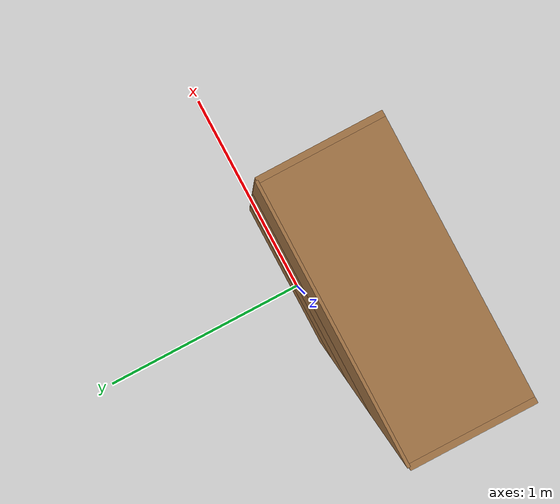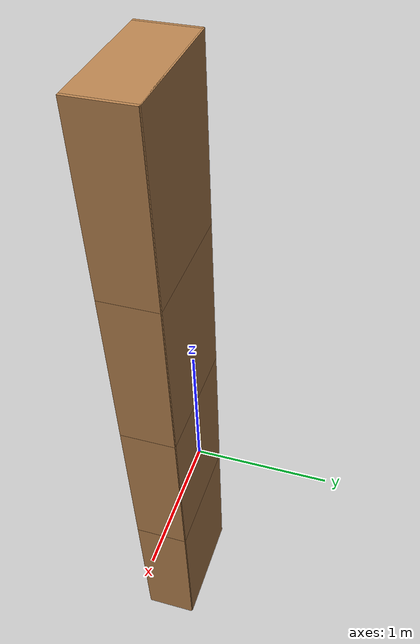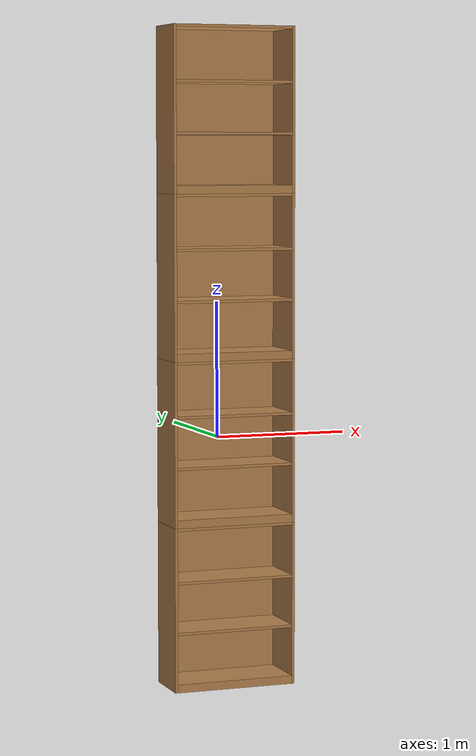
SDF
<?xml version='1.0'?>
<sdf version='1.6'>
  <model name='shelf1.0'>
    <model name='bookshelf'>
      <static>1</static>
      <link name='link'>
        <inertial>
          <mass>1</mass>
        </inertial>
        <collision name='back'>
          <pose frame=''>0 0.005 0.6 0 -0 0</pose>
          <geometry>
            <box>
              <size>0.9 0.01 1.2</size>
            </box>
          </geometry>
        </collision>
        <visual name='visual1'>
          <pose frame=''>0 0.005 0.6 0 -0 0</pose>
          <geometry>
            <box>
              <size>0.9 0.01 1.2</size>
            </box>
          </geometry>
          <material>
            <script>
              <uri>file://media/materials/scripts/gazebo.material</uri>
              <name>Gazebo/Wood</name>
            </script>
          </material>
        </visual>
        <collision name='left_side'>
          <pose frame=''>0.45 -0.195 0.6 0 -0 0</pose>
          <geometry>
            <box>
              <size>0.02 0.4 1.2</size>
            </box>
          </geometry>
        </collision>
        <visual name='visual2'>
          <pose frame=''>0.45 -0.195 0.6 0 -0 0</pose>
          <geometry>
            <box>
              <size>0.02 0.4 1.2</size>
            </box>
          </geometry>
          <material>
            <script>
              <uri>file://media/materials/scripts/gazebo.material</uri>
              <name>Gazebo/Wood</name>
            </script>
          </material>
        </visual>
        <collision name='right_side'>
          <pose frame=''>-0.45 -0.195 0.6 0 -0 0</pose>
          <geometry>
            <box>
              <size>0.02 0.4 1.2</size>
            </box>
          </geometry>
        </collision>
        <visual name='visual3'>
          <pose frame=''>-0.45 -0.195 0.6 0 -0 0</pose>
          <geometry>
            <box>
              <size>0.02 0.4 1.2</size>
            </box>
          </geometry>
          <material>
            <script>
              <uri>file://media/materials/scripts/gazebo.material</uri>
              <name>Gazebo/Wood</name>
            </script>
          </material>
        </visual>
        <collision name='bottom'>
          <pose frame=''>0 -0.195 0.03 0 -0 0</pose>
          <geometry>
            <box>
              <size>0.88 0.4 0.06</size>
            </box>
          </geometry>
        </collision>
        <visual name='visual4'>
          <pose frame=''>0 -0.195 0.03 0 -0 0</pose>
          <geometry>
            <box>
              <size>0.88 0.4 0.06</size>
            </box>
          </geometry>
          <material>
            <script>
              <uri>file://media/materials/scripts/gazebo.material</uri>
              <name>Gazebo/Wood</name>
            </script>
          </material>
        </visual>
        <collision name='top'>
          <pose frame=''>0 -0.195 1.19 0 -0 0</pose>
          <geometry>
            <box>
              <size>0.88 0.4 0.02</size>
            </box>
          </geometry>
        </collision>
        <visual name='visual5'>
          <pose frame=''>0 -0.195 1.19 0 -0 0</pose>
          <geometry>
            <box>
              <size>0.88 0.4 0.02</size>
            </box>
          </geometry>
          <material>
            <script>
              <uri>file://media/materials/scripts/gazebo.material</uri>
              <name>Gazebo/Wood</name>
            </script>
          </material>
        </visual>
        <collision name='low_shelf'>
          <pose frame=''>0 -0.195 0.43 0 -0 0</pose>
          <geometry>
            <box>
              <size>0.88 0.4 0.02</size>
            </box>
          </geometry>
        </collision>
        <visual name='visual6'>
          <pose frame=''>0 -0.195 0.43 0 -0 0</pose>
          <geometry>
            <box>
              <size>0.88 0.4 0.02</size>
            </box>
          </geometry>
          <material>
            <script>
              <uri>file://media/materials/scripts/gazebo.material</uri>
              <name>Gazebo/Wood</name>
            </script>
          </material>
        </visual>
        <collision name='high_shelf'>
          <pose frame=''>0 -0.195 0.8 0 -0 0</pose>
          <geometry>
            <box>
              <size>0.88 0.4 0.02</size>
            </box>
          </geometry>
        </collision>
        <visual name='visual7'>
          <pose frame=''>0 -0.195 0.8 0 -0 0</pose>
          <geometry>
            <box>
              <size>0.88 0.4 0.02</size>
            </box>
          </geometry>
          <material>
            <script>
              <uri>file://media/materials/scripts/gazebo.material</uri>
              <name>Gazebo/Wood</name>
            </script>
          </material>
        </visual>
      </link>
      <pose frame=''>1e-06 0 -1.8 0 -0 0</pose>
    </model>
    <model name='bookshelf_clone'>
      <static>1</static>
      <link name='link'>
        <inertial>
          <mass>1</mass>
        </inertial>
        <collision name='back'>
          <pose frame=''>0 0.005 0.6 0 -0 0</pose>
          <geometry>
            <box>
              <size>0.9 0.01 1.2</size>
            </box>
          </geometry>
        </collision>
        <visual name='visual1'>
          <pose frame=''>0 0.005 0.6 0 -0 0</pose>
          <geometry>
            <box>
              <size>0.9 0.01 1.2</size>
            </box>
          </geometry>
          <material>
            <script>
              <uri>file://media/materials/scripts/gazebo.material</uri>
              <name>Gazebo/Wood</name>
            </script>
          </material>
        </visual>
        <collision name='left_side'>
          <pose frame=''>0.45 -0.195 0.6 0 -0 0</pose>
          <geometry>
            <box>
              <size>0.02 0.4 1.2</size>
            </box>
          </geometry>
        </collision>
        <visual name='visual2'>
          <pose frame=''>0.45 -0.195 0.6 0 -0 0</pose>
          <geometry>
            <box>
              <size>0.02 0.4 1.2</size>
            </box>
          </geometry>
          <material>
            <script>
              <uri>file://media/materials/scripts/gazebo.material</uri>
              <name>Gazebo/Wood</name>
            </script>
          </material>
        </visual>
        <collision name='right_side'>
          <pose frame=''>-0.45 -0.195 0.6 0 -0 0</pose>
          <geometry>
            <box>
              <size>0.02 0.4 1.2</size>
            </box>
          </geometry>
        </collision>
        <visual name='visual3'>
          <pose frame=''>-0.45 -0.195 0.6 0 -0 0</pose>
          <geometry>
            <box>
              <size>0.02 0.4 1.2</size>
            </box>
          </geometry>
          <material>
            <script>
              <uri>file://media/materials/scripts/gazebo.material</uri>
              <name>Gazebo/Wood</name>
            </script>
          </material>
        </visual>
        <collision name='bottom'>
          <pose frame=''>0 -0.195 0.03 0 -0 0</pose>
          <geometry>
            <box>
              <size>0.88 0.4 0.06</size>
            </box>
          </geometry>
        </collision>
        <visual name='visual4'>
          <pose frame=''>0 -0.195 0.03 0 -0 0</pose>
          <geometry>
            <box>
              <size>0.88 0.4 0.06</size>
            </box>
          </geometry>
          <material>
            <script>
              <uri>file://media/materials/scripts/gazebo.material</uri>
              <name>Gazebo/Wood</name>
            </script>
          </material>
        </visual>
        <collision name='top'>
          <pose frame=''>0 -0.195 1.19 0 -0 0</pose>
          <geometry>
            <box>
              <size>0.88 0.4 0.02</size>
            </box>
          </geometry>
        </collision>
        <visual name='visual5'>
          <pose frame=''>0 -0.195 1.19 0 -0 0</pose>
          <geometry>
            <box>
              <size>0.88 0.4 0.02</size>
            </box>
          </geometry>
          <material>
            <script>
              <uri>file://media/materials/scripts/gazebo.material</uri>
              <name>Gazebo/Wood</name>
            </script>
          </material>
        </visual>
        <collision name='low_shelf'>
          <pose frame=''>0 -0.195 0.43 0 -0 0</pose>
          <geometry>
            <box>
              <size>0.88 0.4 0.02</size>
            </box>
          </geometry>
        </collision>
        <visual name='visual6'>
          <pose frame=''>0 -0.195 0.43 0 -0 0</pose>
          <geometry>
            <box>
              <size>0.88 0.4 0.02</size>
            </box>
          </geometry>
          <material>
            <script>
              <uri>file://media/materials/scripts/gazebo.material</uri>
              <name>Gazebo/Wood</name>
            </script>
          </material>
        </visual>
        <collision name='high_shelf'>
          <pose frame=''>0 -0.195 0.8 0 -0 0</pose>
          <geometry>
            <box>
              <size>0.88 0.4 0.02</size>
            </box>
          </geometry>
        </collision>
        <visual name='visual7'>
          <pose frame=''>0 -0.195 0.8 0 -0 0</pose>
          <geometry>
            <box>
              <size>0.88 0.4 0.02</size>
            </box>
          </geometry>
          <material>
            <script>
              <uri>file://media/materials/scripts/gazebo.material</uri>
              <name>Gazebo/Wood</name>
            </script>
          </material>
        </visual>
      </link>
      <pose frame=''>1e-06 0 -0.600002 0 -0 0</pose>
    </model>
    <model name='bookshelf_clone_0'>
      <static>1</static>
      <link name='link'>
        <inertial>
          <mass>1</mass>
        </inertial>
        <collision name='back'>
          <pose frame=''>0 0.005 0.6 0 -0 0</pose>
          <geometry>
            <box>
              <size>0.9 0.01 1.2</size>
            </box>
          </geometry>
        </collision>
        <visual name='visual1'>
          <pose frame=''>0 0.005 0.6 0 -0 0</pose>
          <geometry>
            <box>
              <size>0.9 0.01 1.2</size>
            </box>
          </geometry>
          <material>
            <script>
              <uri>file://media/materials/scripts/gazebo.material</uri>
              <name>Gazebo/Wood</name>
            </script>
          </material>
        </visual>
        <collision name='left_side'>
          <pose frame=''>0.45 -0.195 0.6 0 -0 0</pose>
          <geometry>
            <box>
              <size>0.02 0.4 1.2</size>
            </box>
          </geometry>
        </collision>
        <visual name='visual2'>
          <pose frame=''>0.45 -0.195 0.6 0 -0 0</pose>
          <geometry>
            <box>
              <size>0.02 0.4 1.2</size>
            </box>
          </geometry>
          <material>
            <script>
              <uri>file://media/materials/scripts/gazebo.material</uri>
              <name>Gazebo/Wood</name>
            </script>
          </material>
        </visual>
        <collision name='right_side'>
          <pose frame=''>-0.45 -0.195 0.6 0 -0 0</pose>
          <geometry>
            <box>
              <size>0.02 0.4 1.2</size>
            </box>
          </geometry>
        </collision>
        <visual name='visual3'>
          <pose frame=''>-0.45 -0.195 0.6 0 -0 0</pose>
          <geometry>
            <box>
              <size>0.02 0.4 1.2</size>
            </box>
          </geometry>
          <material>
            <script>
              <uri>file://media/materials/scripts/gazebo.material</uri>
              <name>Gazebo/Wood</name>
            </script>
          </material>
        </visual>
        <collision name='bottom'>
          <pose frame=''>0 -0.195 0.03 0 -0 0</pose>
          <geometry>
            <box>
              <size>0.88 0.4 0.06</size>
            </box>
          </geometry>
        </collision>
        <visual name='visual4'>
          <pose frame=''>0 -0.195 0.03 0 -0 0</pose>
          <geometry>
            <box>
              <size>0.88 0.4 0.06</size>
            </box>
          </geometry>
          <material>
            <script>
              <uri>file://media/materials/scripts/gazebo.material</uri>
              <name>Gazebo/Wood</name>
            </script>
          </material>
        </visual>
        <collision name='top'>
          <pose frame=''>0 -0.195 1.19 0 -0 0</pose>
          <geometry>
            <box>
              <size>0.88 0.4 0.02</size>
            </box>
          </geometry>
        </collision>
        <visual name='visual5'>
          <pose frame=''>0 -0.195 1.19 0 -0 0</pose>
          <geometry>
            <box>
              <size>0.88 0.4 0.02</size>
            </box>
          </geometry>
          <material>
            <script>
              <uri>file://media/materials/scripts/gazebo.material</uri>
              <name>Gazebo/Wood</name>
            </script>
          </material>
        </visual>
        <collision name='low_shelf'>
          <pose frame=''>0 -0.195 0.43 0 -0 0</pose>
          <geometry>
            <box>
              <size>0.88 0.4 0.02</size>
            </box>
          </geometry>
        </collision>
        <visual name='visual6'>
          <pose frame=''>0 -0.195 0.43 0 -0 0</pose>
          <geometry>
            <box>
              <size>0.88 0.4 0.02</size>
            </box>
          </geometry>
          <material>
            <script>
              <uri>file://media/materials/scripts/gazebo.material</uri>
              <name>Gazebo/Wood</name>
            </script>
          </material>
        </visual>
        <collision name='high_shelf'>
          <pose frame=''>0 -0.195 0.8 0 -0 0</pose>
          <geometry>
            <box>
              <size>0.88 0.4 0.02</size>
            </box>
          </geometry>
        </collision>
        <visual name='visual7'>
          <pose frame=''>0 -0.195 0.8 0 -0 0</pose>
          <geometry>
            <box>
              <size>0.88 0.4 0.02</size>
            </box>
          </geometry>
          <material>
            <script>
              <uri>file://media/materials/scripts/gazebo.material</uri>
              <name>Gazebo/Wood</name>
            </script>
          </material>
        </visual>
      </link>
      <pose frame=''>1e-06 0 0.599998 0 -0 0</pose>
    </model>
    <model name='bookshelf_clone_0_clone'>
      <static>1</static>
      <link name='link'>
        <inertial>
          <mass>1</mass>
        </inertial>
        <collision name='back'>
          <pose frame=''>0 0.005 0.6 0 -0 0</pose>
          <geometry>
            <box>
              <size>0.9 0.01 1.2</size>
            </box>
          </geometry>
        </collision>
        <visual name='visual1'>
          <pose frame=''>0 0.005 0.6 0 -0 0</pose>
          <geometry>
            <box>
              <size>0.9 0.01 1.2</size>
            </box>
          </geometry>
          <material>
            <script>
              <uri>file://media/materials/scripts/gazebo.material</uri>
              <name>Gazebo/Wood</name>
            </script>
          </material>
        </visual>
        <collision name='left_side'>
          <pose frame=''>0.45 -0.195 0.6 0 -0 0</pose>
          <geometry>
            <box>
              <size>0.02 0.4 1.2</size>
            </box>
          </geometry>
        </collision>
        <visual name='visual2'>
          <pose frame=''>0.45 -0.195 0.6 0 -0 0</pose>
          <geometry>
            <box>
              <size>0.02 0.4 1.2</size>
            </box>
          </geometry>
          <material>
            <script>
              <uri>file://media/materials/scripts/gazebo.material</uri>
              <name>Gazebo/Wood</name>
            </script>
          </material>
        </visual>
        <collision name='right_side'>
          <pose frame=''>-0.45 -0.195 0.6 0 -0 0</pose>
          <geometry>
            <box>
              <size>0.02 0.4 1.2</size>
            </box>
          </geometry>
        </collision>
        <visual name='visual3'>
          <pose frame=''>-0.45 -0.195 0.6 0 -0 0</pose>
          <geometry>
            <box>
              <size>0.02 0.4 1.2</size>
            </box>
          </geometry>
          <material>
            <script>
              <uri>file://media/materials/scripts/gazebo.material</uri>
              <name>Gazebo/Wood</name>
            </script>
          </material>
        </visual>
        <collision name='bottom'>
          <pose frame=''>0 -0.195 0.03 0 -0 0</pose>
          <geometry>
            <box>
              <size>0.88 0.4 0.06</size>
            </box>
          </geometry>
        </collision>
        <visual name='visual4'>
          <pose frame=''>0 -0.195 0.03 0 -0 0</pose>
          <geometry>
            <box>
              <size>0.88 0.4 0.06</size>
            </box>
          </geometry>
          <material>
            <script>
              <uri>file://media/materials/scripts/gazebo.material</uri>
              <name>Gazebo/Wood</name>
            </script>
          </material>
        </visual>
        <collision name='top'>
          <pose frame=''>0 -0.195 1.19 0 -0 0</pose>
          <geometry>
            <box>
              <size>0.88 0.4 0.02</size>
            </box>
          </geometry>
        </collision>
        <visual name='visual5'>
          <pose frame=''>0 -0.195 1.19 0 -0 0</pose>
          <geometry>
            <box>
              <size>0.88 0.4 0.02</size>
            </box>
          </geometry>
          <material>
            <script>
              <uri>file://media/materials/scripts/gazebo.material</uri>
              <name>Gazebo/Wood</name>
            </script>
          </material>
        </visual>
        <collision name='low_shelf'>
          <pose frame=''>0 -0.195 0.43 0 -0 0</pose>
          <geometry>
            <box>
              <size>0.88 0.4 0.02</size>
            </box>
          </geometry>
        </collision>
        <visual name='visual6'>
          <pose frame=''>0 -0.195 0.43 0 -0 0</pose>
          <geometry>
            <box>
              <size>0.88 0.4 0.02</size>
            </box>
          </geometry>
          <material>
            <script>
              <uri>file://media/materials/scripts/gazebo.material</uri>
              <name>Gazebo/Wood</name>
            </script>
          </material>
        </visual>
        <collision name='high_shelf'>
          <pose frame=''>0 -0.195 0.8 0 -0 0</pose>
          <geometry>
            <box>
              <size>0.88 0.4 0.02</size>
            </box>
          </geometry>
        </collision>
        <visual name='visual7'>
          <pose frame=''>0 -0.195 0.8 0 -0 0</pose>
          <geometry>
            <box>
              <size>0.88 0.4 0.02</size>
            </box>
          </geometry>
          <material>
            <script>
              <uri>file://media/materials/scripts/gazebo.material</uri>
              <name>Gazebo/Wood</name>
            </script>
          </material>
        </visual>
      </link>
      <pose frame=''>1e-06 0 1.8 0 -0 0</pose>
    </model>
    <joint name='link_JOINT_3' type='fixed'>
      <parent>bookshelf::link</parent>
      <child>bookshelf_clone::link</child>
      <pose frame=''>0 0 0 0 -0 0</pose>
      <physics>
        <ode>
          <limit>
            <cfm>0</cfm>
            <erp>0.2</erp>
          </limit>
          <suspension>
            <cfm>0</cfm>
            <erp>0.2</erp>
          </suspension>
        </ode>
      </physics>
    </joint>
    <joint name='link_JOINT_4' type='fixed'>
      <parent>bookshelf::link</parent>
      <child>bookshelf_clone_0::link</child>
      <pose frame=''>0 0 0 0 -0 0</pose>
      <physics>
        <ode>
          <limit>
            <cfm>0</cfm>
            <erp>0.2</erp>
          </limit>
          <suspension>
            <cfm>0</cfm>
            <erp>0.2</erp>
          </suspension>
        </ode>
      </physics>
    </joint>
    <joint name='link_JOINT_5' type='fixed'>
      <parent>bookshelf::link</parent>
      <child>bookshelf_clone_0_clone::link</child>
      <pose frame=''>0 0 0 0 -0 0</pose>
      <physics>
        <ode>
          <limit>
            <cfm>0</cfm>
            <erp>0.2</erp>
          </limit>
          <suspension>
            <cfm>0</cfm>
            <erp>0.2</erp>
          </suspension>
        </ode>
      </physics>
    </joint>
    <static>0</static>
    <allow_auto_disable>1</allow_auto_disable>
  </model>
</sdf>
